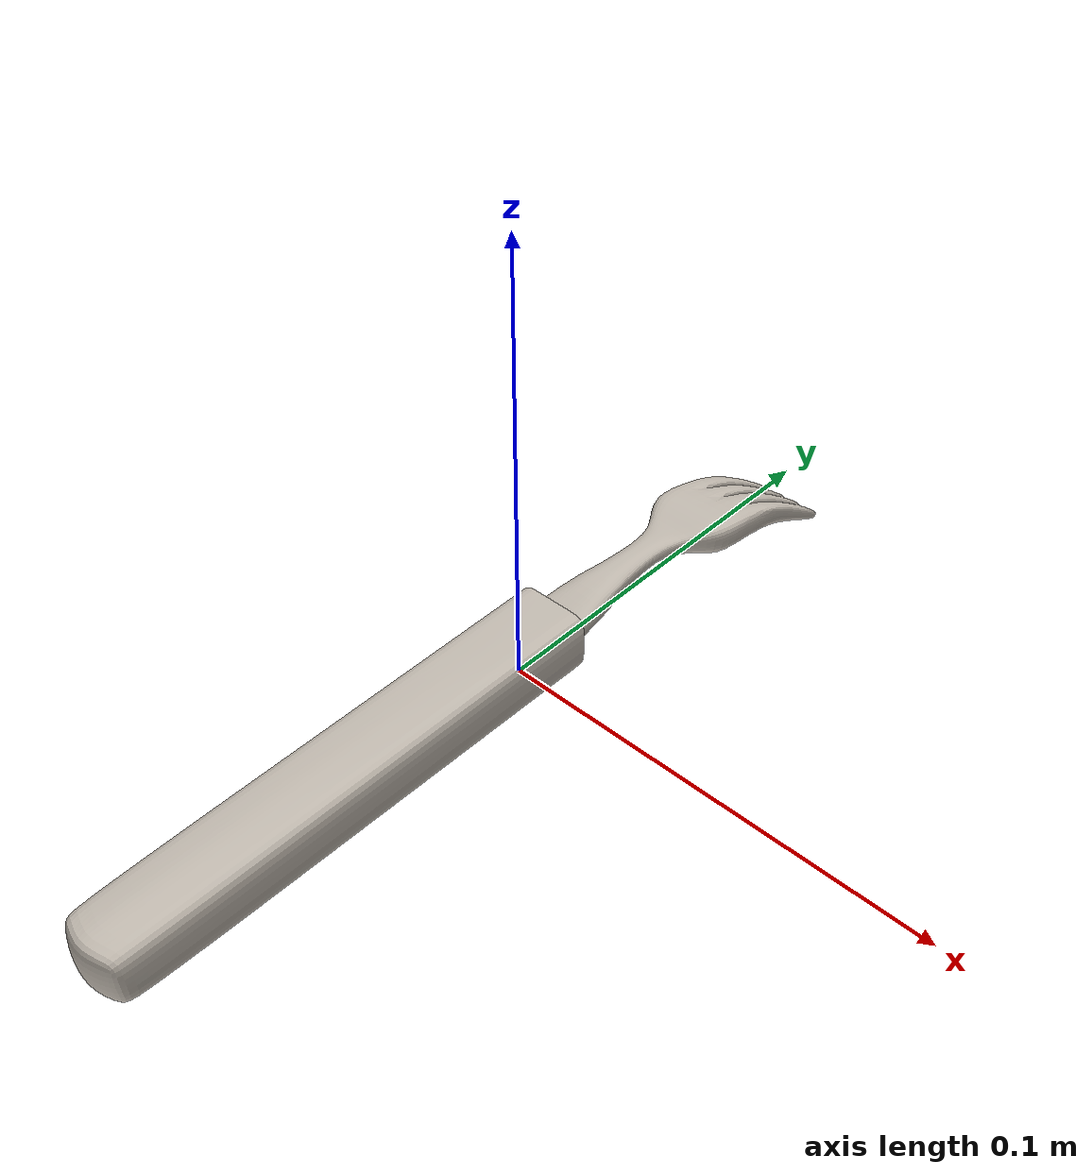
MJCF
<mujoco model="fork_0">
  <compiler angle="radian"/>
  <default>
    <default class="visual">
      <geom group="1" type="mesh" contype="0" conaffinity="0"/>
    </default>
    <default class="collision">
      <geom group="0"/>
    </default>
    <default class="grasppoint">
        <site type="sphere" size="0.01" group="4" rgba="0 0 1 0.2" />
    </default>
  </default>
  <asset>
    <mesh file="visual/model_normalized_0.obj" name="model_normalized_0_vis" scale="0.21 0.21 0.27" refquat="0.4999999999999999 0.5 -0.5000000000000001 -0.5"/>
    <mesh file="visual/model_normalized_1.obj" name="model_normalized_1_vis" scale="0.21 0.21 0.27" refquat="0.4999999999999999 0.5 -0.5000000000000001 -0.5"/>
    <mesh file="collision/model_normalized_collision_22.obj" name="model_normalized_collision_22._coll" scale="0.21 0.21 0.27" refquat="0.4999999999999999 0.5 -0.5000000000000001 -0.5"/>
    <mesh file="collision/model_normalized_collision_23.obj" name="model_normalized_collision_23._coll" scale="0.21 0.21 0.27" refquat="0.4999999999999999 0.5 -0.5000000000000001 -0.5"/>
    <mesh file="collision/model_normalized_collision_21.obj" name="model_normalized_collision_21._coll" scale="0.21 0.21 0.27" refquat="0.4999999999999999 0.5 -0.5000000000000001 -0.5"/>
    <mesh file="collision/model_normalized_collision_20.obj" name="model_normalized_collision_20._coll" scale="0.21 0.21 0.27" refquat="0.4999999999999999 0.5 -0.5000000000000001 -0.5"/>
    <mesh file="collision/model_normalized_collision_24.obj" name="model_normalized_collision_24._coll" scale="0.21 0.21 0.27" refquat="0.4999999999999999 0.5 -0.5000000000000001 -0.5"/>
    <mesh file="collision/model_normalized_collision_30.obj" name="model_normalized_collision_30._coll" scale="0.21 0.21 0.27" refquat="0.4999999999999999 0.5 -0.5000000000000001 -0.5"/>
    <mesh file="collision/model_normalized_collision_18.obj" name="model_normalized_collision_18._coll" scale="0.21 0.21 0.27" refquat="0.4999999999999999 0.5 -0.5000000000000001 -0.5"/>
    <mesh file="collision/model_normalized_collision_19.obj" name="model_normalized_collision_19._coll" scale="0.21 0.21 0.27" refquat="0.4999999999999999 0.5 -0.5000000000000001 -0.5"/>
    <mesh file="collision/model_normalized_collision_31.obj" name="model_normalized_collision_31._coll" scale="0.21 0.21 0.27" refquat="0.4999999999999999 0.5 -0.5000000000000001 -0.5"/>
    <mesh file="collision/model_normalized_collision_25.obj" name="model_normalized_collision_25._coll" scale="0.21 0.21 0.27" refquat="0.4999999999999999 0.5 -0.5000000000000001 -0.5"/>
    <mesh file="collision/model_normalized_collision_27.obj" name="model_normalized_collision_27._coll" scale="0.21 0.21 0.27" refquat="0.4999999999999999 0.5 -0.5000000000000001 -0.5"/>
    <mesh file="collision/model_normalized_collision_26.obj" name="model_normalized_collision_26._coll" scale="0.21 0.21 0.27" refquat="0.4999999999999999 0.5 -0.5000000000000001 -0.5"/>
    <mesh file="collision/model_normalized_collision_9.obj" name="model_normalized_collision_9._coll" scale="0.21 0.21 0.27" refquat="0.4999999999999999 0.5 -0.5000000000000001 -0.5"/>
    <mesh file="collision/model_normalized_collision_8.obj" name="model_normalized_collision_8._coll" scale="0.21 0.21 0.27" refquat="0.4999999999999999 0.5 -0.5000000000000001 -0.5"/>
    <mesh file="collision/model_normalized_collision_6.obj" name="model_normalized_collision_6._coll" scale="0.21 0.21 0.27" refquat="0.4999999999999999 0.5 -0.5000000000000001 -0.5"/>
    <mesh file="collision/model_normalized_collision_7.obj" name="model_normalized_collision_7._coll" scale="0.21 0.21 0.27" refquat="0.4999999999999999 0.5 -0.5000000000000001 -0.5"/>
    <mesh file="collision/model_normalized_collision_5.obj" name="model_normalized_collision_5._coll" scale="0.21 0.21 0.27" refquat="0.4999999999999999 0.5 -0.5000000000000001 -0.5"/>
    <mesh file="collision/model_normalized_collision_4.obj" name="model_normalized_collision_4._coll" scale="0.21 0.21 0.27" refquat="0.4999999999999999 0.5 -0.5000000000000001 -0.5"/>
    <mesh file="collision/model_normalized_collision_0.obj" name="model_normalized_collision_0._coll" scale="0.21 0.21 0.27" refquat="0.4999999999999999 0.5 -0.5000000000000001 -0.5"/>
    <mesh file="collision/model_normalized_collision_1.obj" name="model_normalized_collision_1._coll" scale="0.21 0.21 0.27" refquat="0.4999999999999999 0.5 -0.5000000000000001 -0.5"/>
    <mesh file="collision/model_normalized_collision_3.obj" name="model_normalized_collision_3._coll" scale="0.21 0.21 0.27" refquat="0.4999999999999999 0.5 -0.5000000000000001 -0.5"/>
    <mesh file="collision/model_normalized_collision_2.obj" name="model_normalized_collision_2._coll" scale="0.21 0.21 0.27" refquat="0.4999999999999999 0.5 -0.5000000000000001 -0.5"/>
    <mesh file="collision/model_normalized_collision_17.obj" name="model_normalized_collision_17._coll" scale="0.21 0.21 0.27" refquat="0.4999999999999999 0.5 -0.5000000000000001 -0.5"/>
    <mesh file="collision/model_normalized_collision_16.obj" name="model_normalized_collision_16._coll" scale="0.21 0.21 0.27" refquat="0.4999999999999999 0.5 -0.5000000000000001 -0.5"/>
    <mesh file="collision/model_normalized_collision_28.obj" name="model_normalized_collision_28._coll" scale="0.21 0.21 0.27" refquat="0.4999999999999999 0.5 -0.5000000000000001 -0.5"/>
    <mesh file="collision/model_normalized_collision_14.obj" name="model_normalized_collision_14._coll" scale="0.21 0.21 0.27" refquat="0.4999999999999999 0.5 -0.5000000000000001 -0.5"/>
    <mesh file="collision/model_normalized_collision_15.obj" name="model_normalized_collision_15._coll" scale="0.21 0.21 0.27" refquat="0.4999999999999999 0.5 -0.5000000000000001 -0.5"/>
    <mesh file="collision/model_normalized_collision_29.obj" name="model_normalized_collision_29._coll" scale="0.21 0.21 0.27" refquat="0.4999999999999999 0.5 -0.5000000000000001 -0.5"/>
    <mesh file="collision/model_normalized_collision_11.obj" name="model_normalized_collision_11._coll" scale="0.21 0.21 0.27" refquat="0.4999999999999999 0.5 -0.5000000000000001 -0.5"/>
    <mesh file="collision/model_normalized_collision_10.obj" name="model_normalized_collision_10._coll" scale="0.21 0.21 0.27" refquat="0.4999999999999999 0.5 -0.5000000000000001 -0.5"/>
    <mesh file="collision/model_normalized_collision_12.obj" name="model_normalized_collision_12._coll" scale="0.21 0.21 0.27" refquat="0.4999999999999999 0.5 -0.5000000000000001 -0.5"/>
    <mesh file="collision/model_normalized_collision_13.obj" name="model_normalized_collision_13._coll" scale="0.21 0.21 0.27" refquat="0.4999999999999999 0.5 -0.5000000000000001 -0.5"/>
    <texture type="2d" name="image3" file="visual/image3.png"/>
    <texture type="2d" name="image0" file="visual/image0.png"/>
    <material name="mango" texture="image3" specular="0.5" shininess="0.25"/>
    <material name="tenedor" texture="image0" specular="0.5" shininess="0.25"/>
  </asset>
  <worldbody>
  <body>
      <body name="object">
        <geom solimp="0.998 0.998 0.001" solref="0.001 1" density="100" friction="0.95 0.3 0.1" type="mesh" mesh="model_normalized_0_vis" conaffinity="0" contype="0" group="1" material="mango"/>
        <geom solimp="0.998 0.998 0.001" solref="0.001 1" density="100" friction="0.95 0.3 0.1" type="mesh" mesh="model_normalized_1_vis" conaffinity="0" contype="0" group="1" material="tenedor"/>
        <geom solimp="0.998 0.998 0.001" solref="0.001 1" density="100" friction="0.95 0.3 0.1" type="mesh" mesh="model_normalized_collision_22._coll" group="0" rgba="0.8 0.8 0.8 0.0"/>
        <geom solimp="0.998 0.998 0.001" solref="0.001 1" density="100" friction="0.95 0.3 0.1" type="mesh" mesh="model_normalized_collision_23._coll" group="0" rgba="0.8 0.8 0.8 0.0"/>
        <geom solimp="0.998 0.998 0.001" solref="0.001 1" density="100" friction="0.95 0.3 0.1" type="mesh" mesh="model_normalized_collision_21._coll" group="0" rgba="0.8 0.8 0.8 0.0"/>
        <geom solimp="0.998 0.998 0.001" solref="0.001 1" density="100" friction="0.95 0.3 0.1" type="mesh" mesh="model_normalized_collision_20._coll" group="0" rgba="0.8 0.8 0.8 0.0"/>
        <geom solimp="0.998 0.998 0.001" solref="0.001 1" density="100" friction="0.95 0.3 0.1" type="mesh" mesh="model_normalized_collision_24._coll" group="0" rgba="0.8 0.8 0.8 0.0"/>
        <geom solimp="0.998 0.998 0.001" solref="0.001 1" density="100" friction="0.95 0.3 0.1" type="mesh" mesh="model_normalized_collision_30._coll" group="0" rgba="0.8 0.8 0.8 0.0"/>
        <geom solimp="0.998 0.998 0.001" solref="0.001 1" density="100" friction="0.95 0.3 0.1" type="mesh" mesh="model_normalized_collision_18._coll" group="0" rgba="0.8 0.8 0.8 0.0"/>
        <geom solimp="0.998 0.998 0.001" solref="0.001 1" density="100" friction="0.95 0.3 0.1" type="mesh" mesh="model_normalized_collision_19._coll" group="0" rgba="0.8 0.8 0.8 0.0"/>
        <geom solimp="0.998 0.998 0.001" solref="0.001 1" density="100" friction="0.95 0.3 0.1" type="mesh" mesh="model_normalized_collision_31._coll" group="0" rgba="0.8 0.8 0.8 0.0"/>
        <geom solimp="0.998 0.998 0.001" solref="0.001 1" density="100" friction="0.95 0.3 0.1" type="mesh" mesh="model_normalized_collision_25._coll" group="0" rgba="0.8 0.8 0.8 0.0"/>
        <geom solimp="0.998 0.998 0.001" solref="0.001 1" density="100" friction="0.95 0.3 0.1" type="mesh" mesh="model_normalized_collision_27._coll" group="0" rgba="0.8 0.8 0.8 0.0"/>
        <geom solimp="0.998 0.998 0.001" solref="0.001 1" density="100" friction="0.95 0.3 0.1" type="mesh" mesh="model_normalized_collision_26._coll" group="0" rgba="0.8 0.8 0.8 0.0"/>
        <geom solimp="0.998 0.998 0.001" solref="0.001 1" density="100" friction="0.95 0.3 0.1" type="mesh" mesh="model_normalized_collision_9._coll" group="0" rgba="0.8 0.8 0.8 0.0"/>
        <geom solimp="0.998 0.998 0.001" solref="0.001 1" density="100" friction="0.95 0.3 0.1" type="mesh" mesh="model_normalized_collision_8._coll" group="0" rgba="0.8 0.8 0.8 0.0"/>
        <geom solimp="0.998 0.998 0.001" solref="0.001 1" density="100" friction="0.95 0.3 0.1" type="mesh" mesh="model_normalized_collision_6._coll" group="0" rgba="0.8 0.8 0.8 0.0"/>
        <geom solimp="0.998 0.998 0.001" solref="0.001 1" density="100" friction="0.95 0.3 0.1" type="mesh" mesh="model_normalized_collision_7._coll" group="0" rgba="0.8 0.8 0.8 0.0"/>
        <geom solimp="0.998 0.998 0.001" solref="0.001 1" density="100" friction="0.95 0.3 0.1" type="mesh" mesh="model_normalized_collision_5._coll" group="0" rgba="0.8 0.8 0.8 0.0"/>
        <geom solimp="0.998 0.998 0.001" solref="0.001 1" density="100" friction="0.95 0.3 0.1" type="mesh" mesh="model_normalized_collision_4._coll" group="0" rgba="0.8 0.8 0.8 0.0"/>
        <geom solimp="0.998 0.998 0.001" solref="0.001 1" density="100" friction="0.95 0.3 0.1" type="mesh" mesh="model_normalized_collision_0._coll" group="0" rgba="0.8 0.8 0.8 0.0"/>
        <geom solimp="0.998 0.998 0.001" solref="0.001 1" density="100" friction="0.95 0.3 0.1" type="mesh" mesh="model_normalized_collision_1._coll" group="0" rgba="0.8 0.8 0.8 0.0"/>
        <geom solimp="0.998 0.998 0.001" solref="0.001 1" density="100" friction="0.95 0.3 0.1" type="mesh" mesh="model_normalized_collision_3._coll" group="0" rgba="0.8 0.8 0.8 0.0"/>
        <geom solimp="0.998 0.998 0.001" solref="0.001 1" density="100" friction="0.95 0.3 0.1" type="mesh" mesh="model_normalized_collision_2._coll" group="0" rgba="0.8 0.8 0.8 0.0"/>
        <geom solimp="0.998 0.998 0.001" solref="0.001 1" density="100" friction="0.95 0.3 0.1" type="mesh" mesh="model_normalized_collision_17._coll" group="0" rgba="0.8 0.8 0.8 0.0"/>
        <geom solimp="0.998 0.998 0.001" solref="0.001 1" density="100" friction="0.95 0.3 0.1" type="mesh" mesh="model_normalized_collision_16._coll" group="0" rgba="0.8 0.8 0.8 0.0"/>
        <geom solimp="0.998 0.998 0.001" solref="0.001 1" density="100" friction="0.95 0.3 0.1" type="mesh" mesh="model_normalized_collision_28._coll" group="0" rgba="0.8 0.8 0.8 0.0"/>
        <geom solimp="0.998 0.998 0.001" solref="0.001 1" density="100" friction="0.95 0.3 0.1" type="mesh" mesh="model_normalized_collision_14._coll" group="0" rgba="0.8 0.8 0.8 0.0"/>
        <geom solimp="0.998 0.998 0.001" solref="0.001 1" density="100" friction="0.95 0.3 0.1" type="mesh" mesh="model_normalized_collision_15._coll" group="0" rgba="0.8 0.8 0.8 0.0"/>
        <geom solimp="0.998 0.998 0.001" solref="0.001 1" density="100" friction="0.95 0.3 0.1" type="mesh" mesh="model_normalized_collision_29._coll" group="0" rgba="0.8 0.8 0.8 0.0"/>
        <geom solimp="0.998 0.998 0.001" solref="0.001 1" density="100" friction="0.95 0.3 0.1" type="mesh" mesh="model_normalized_collision_11._coll" group="0" rgba="0.8 0.8 0.8 0.0"/>
        <geom solimp="0.998 0.998 0.001" solref="0.001 1" density="100" friction="0.95 0.3 0.1" type="mesh" mesh="model_normalized_collision_10._coll" group="0" rgba="0.8 0.8 0.8 0.0"/>
        <geom solimp="0.998 0.998 0.001" solref="0.001 1" density="100" friction="0.95 0.3 0.1" type="mesh" mesh="model_normalized_collision_12._coll" group="0" rgba="0.8 0.8 0.8 0.0"/>
        <geom solimp="0.998 0.998 0.001" solref="0.001 1" density="100" friction="0.95 0.3 0.1" type="mesh" mesh="model_normalized_collision_13._coll" group="0" rgba="0.8 0.8 0.8 0.0"/>
      </body>
      <site rgba="0 0 0 0" size="0.005" pos="0.00010261418924029473 0.0002942476108916076 -0.010479030622954919" name="bottom_site"/>
      <site rgba="0 0 0 0" size="0.005" pos="0.00010261418924029473 0.0002942476108916076 0.010746209290359117" name="top_site"/>
      <site rgba="0 0 0 0" size="0.005" pos="0.010718293362569966 0.10993179109795605 0.00013358933370209938" name="horizontal_radius_site"/>
      <site class="grasppoint" pos="0 -0.06 0"/>
</body>
</worldbody>
</mujoco>
